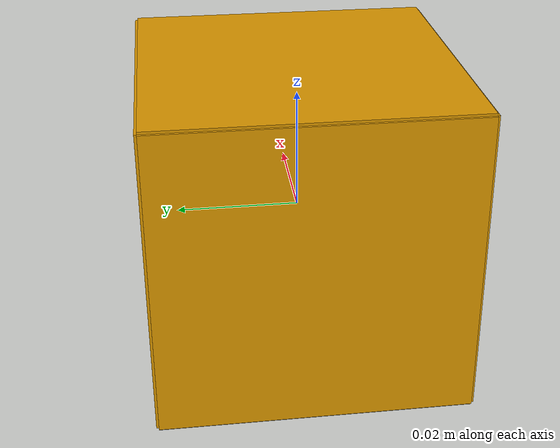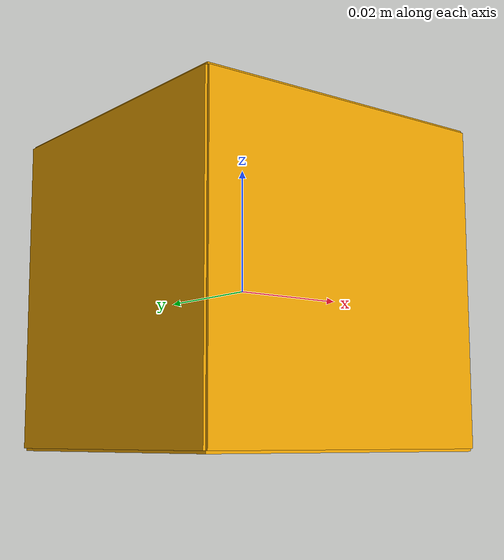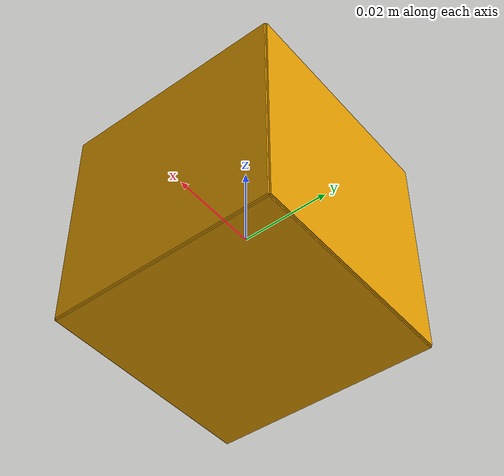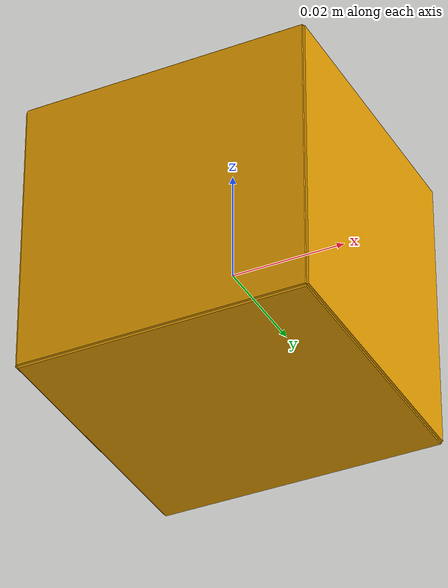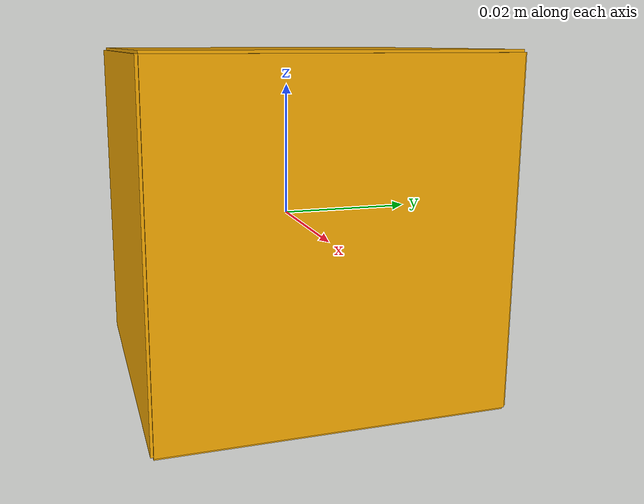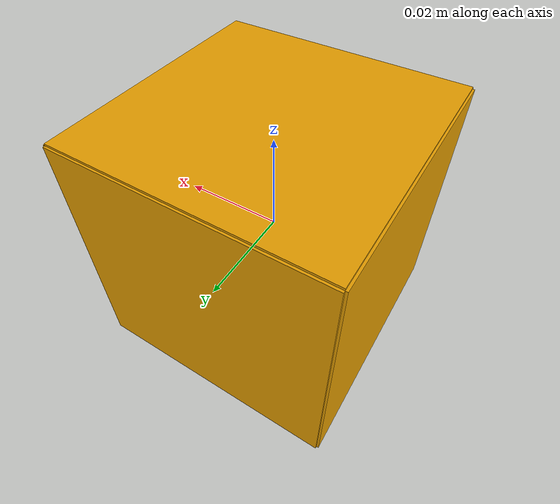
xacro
<?xml version="1.0"?>
<robot xmlns:xacro="http://www.ros.org/wiki/xacro" name="aruco_cubes">

  <!-- Parametric ArUco cube (5 cm default) -->
  <xacro:macro name="aruco_cube" params="name start_id size:=0.05 decal_t:=0.0004 tex_root:='.' bottom_mat:='blank' mass:=0.05">
    <xacro:property name="h" value="${size/2.0}"/>
    <xacro:property name="t" value="${decal_t}"/>
    <xacro:property name="id1" value="${start_id}"/>
    <xacro:property name="id2" value="${start_id+1}"/>
    <xacro:property name="id3" value="${start_id+2}"/>
    <xacro:property name="id4" value="${start_id+3}"/>
    <xacro:property name="id5" value="${start_id+4}"/>

    <link name="${name}">
      <!-- Inertial (uniform cube) -->
      <inertial>
        <origin xyz="0 0 0" rpy="0 0 0"/>
        <mass value="${mass}"/>
        <inertia ixx="${mass*size*size/6.0}" ixy="0" ixz="0"
                 iyy="${mass*size*size/6.0}" iyz="0"
                 izz="${mass*size*size/6.0}"/>
      </inertial>

      <!-- Single collision shape -->
      <collision>
        <origin xyz="0 0 0" rpy="0 0 0"/>
        <geometry><box size="${size} ${size} ${size}"/></geometry>
      </collision>

      <!-- Plain body visual -->
      <visual name="${name}_body">
        <origin xyz="0 0 0" rpy="0 0 0"/>
        <geometry><box size="${size} ${size} ${size}"/></geometry>
        <material name="${name}_body_mat"><color rgba="0.95 0.95 0.95 1"/></material>
      </visual>

      <!-- Six ultra-thin “decal” visuals (so each face can have its own texture) -->
      <visual name="${name}_face_xp"><origin xyz="${h + t/2} 0 0" rpy="0 0 0"/><geometry><box size="${t} ${size} ${size}"/></geometry></visual>
      <visual name="${name}_face_xm"><origin xyz="${-h - t/2} 0 0" rpy="0 0 0"/><geometry><box size="${t} ${size} ${size}"/></geometry></visual>
      <visual name="${name}_face_yp"><origin xyz="0 ${h + t/2} 0" rpy="0 0 0"/><geometry><box size="${size} ${t} ${size}"/></geometry></visual>
      <visual name="${name}_face_ym"><origin xyz="0 ${-h - t/2} 0" rpy="0 0 0"/><geometry><box size="${size} ${t} ${size}"/></geometry></visual>
      <visual name="${name}_face_zp"><origin xyz="0 0 ${h + t/2}" rpy="0 0 0"/><geometry><box size="${size} ${size} ${t}"/></geometry></visual>
      <visual name="${name}_face_zm"><origin xyz="0 0 ${-h - t/2}" rpy="0 0 0"/><geometry><box size="${size} ${size} ${t}"/></geometry></visual>
    </link>

    <!-- Gazebo Classic: bind each face to a local OGRE material (no package needed) -->
    <gazebo reference="${name}_face_xp"><material><script>
      <uri>model://${tex_root}/materials/scripts</uri>
      <uri>model://${tex_root}/materials/textures</uri>
      <name>aruco_${id1}</name>
    </script></material></gazebo>

    <gazebo reference="${name}_face_xm"><material><script>
      <uri>model://${tex_root}/materials/scripts</uri>
      <uri>model://${tex_root}/materials/textures</uri>
      <name>aruco_${id2}</name>
    </script></material></gazebo>

    <gazebo reference="${name}_face_yp"><material><script>
      <uri>model://${tex_root}/materials/scripts</uri>
      <uri>model://${tex_root}/materials/textures</uri>
      <name>aruco_${id3}</name>
    </script></material></gazebo>

    <gazebo reference="${name}_face_ym"><material><script>
      <uri>model://${tex_root}/materials/scripts</uri>
      <uri>model://${tex_root}/materials/textures</uri>
      <name>aruco_${id4}</name>
    </script></material></gazebo>

    <gazebo reference="${name}_face_zp"><material><script>
      <uri>model://${tex_root}/materials/scripts</uri>
      <uri>model://${tex_root}/materials/textures</uri>
      <name>aruco_${id5}</name>
    </script></material></gazebo>

    <gazebo reference="${name}_face_zm"><material><script>
      <uri>model://${tex_root}/materials/scripts</uri>
      <uri>model://${tex_root}/materials/textures</uri>
      <name>${bottom_mat}</name>
    </script></material></gazebo>

    <gazebo reference="${name}">
      <selfCollide>false</selfCollide>
      <mu1>0.8</mu1><mu2>0.8</mu2><kp>1e6</kp><kd>1</kd>
    </gazebo>
  </xacro:macro>

  <!-- Make this file directly instantiable from CLI -->
  <xacro:arg name="name" default="aruco_cube"/>
  <xacro:arg name="start_id" default="1"/>
  <xacro:arg name="size" default="0.05"/>
  <xacro:arg name="decal_t" default="0.0004"/>
  <xacro:arg name="tex_root" default="."/>
  <xacro:arg name="bottom_mat" default="blank"/>

  <xacro:aruco_cube name="$(arg name)" start_id="$(arg start_id)" size="$(arg size)"
                    decal_t="$(arg decal_t)" tex_root="$(arg tex_root)" bottom_mat="$(arg bottom_mat)"/>
</robot>
